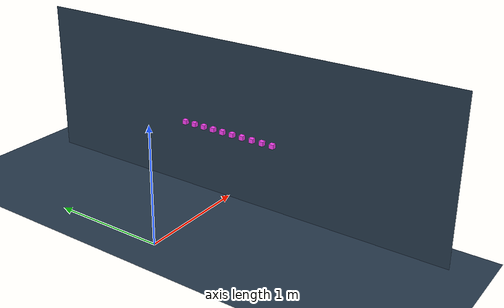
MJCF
<mujoco model="sticky_feet10">
  <option timestep="0.004" integrator="implicitfast" iterations="10" ls_iterations="8"/>
  <visual>
    <headlight ambient="0.4 0.4 0.4" diffuse="0.65 0.65 0.65" specular="0.1 0.1 0.1"/>
    <map haze="0"/>
  </visual>
  <asset>
    <texture type="skybox" builtin="gradient" rgb1="0.3 0.5 0.7" rgb2="0 0 0" width="512" height="512"/>
    <texture name="grid" type="2d" builtin="checker" rgb1="0.2 0.3 0.4" rgb2="0.1 0.15 0.2" width="512" height="512"/>
    <material name="grid" texture="grid" texrepeat="10 10" reflectance="0"/>
    <material name="foot" rgba="1 0.258824 0.976471 1"/>
  </asset>
  <worldbody>
    <light pos="0 0 2.0" dir="0 0 -1" diffuse="0.8 0.8 0.8"/>
    <geom name="floor" type="plane" size="0 0 0.05" material="grid" contype="1" conaffinity="1" priority="1" friction="2 0.5 0.5"/>
    <geom name="wall" type="plane" pos="1 0 0.6" zaxis="-1 0 0" size="0.8 2 0.05" material="grid" contype="1" conaffinity="1" friction="2 0.5 0.5"/>
    <body name="foot0" pos="0.975 -0.450 0.6">
      <freejoint/>
      <geom name="foot0" type="box" size="0.02 0.02 0.02" material="foot"
            contype="0" conaffinity="1" friction="2 0.5 0.5" margin="0.01" gap="0.01"/>
    </body>
    <body name="foot1" pos="0.975 -0.350 0.6">
      <freejoint/>
      <geom name="foot1" type="box" size="0.02 0.02 0.02" material="foot"
            contype="0" conaffinity="1" friction="2 0.5 0.5" margin="0.01" gap="0.01"/>
    </body>
    <body name="foot2" pos="0.975 -0.250 0.6">
      <freejoint/>
      <geom name="foot2" type="box" size="0.02 0.02 0.02" material="foot"
            contype="0" conaffinity="1" friction="2 0.5 0.5" margin="0.01" gap="0.01"/>
    </body>
    <body name="foot3" pos="0.975 -0.150 0.6">
      <freejoint/>
      <geom name="foot3" type="box" size="0.02 0.02 0.02" material="foot"
            contype="0" conaffinity="1" friction="2 0.5 0.5" margin="0.01" gap="0.01"/>
    </body>
    <body name="foot4" pos="0.975 -0.050 0.6">
      <freejoint/>
      <geom name="foot4" type="box" size="0.02 0.02 0.02" material="foot"
            contype="0" conaffinity="1" friction="2 0.5 0.5" margin="0.01" gap="0.01"/>
    </body>
    <body name="foot5" pos="0.975 0.050 0.6">
      <freejoint/>
      <geom name="foot5" type="box" size="0.02 0.02 0.02" material="foot"
            contype="0" conaffinity="1" friction="2 0.5 0.5" margin="0.01" gap="0.01"/>
    </body>
    <body name="foot6" pos="0.975 0.150 0.6">
      <freejoint/>
      <geom name="foot6" type="box" size="0.02 0.02 0.02" material="foot"
            contype="0" conaffinity="1" friction="2 0.5 0.5" margin="0.01" gap="0.01"/>
    </body>
    <body name="foot7" pos="0.975 0.250 0.6">
      <freejoint/>
      <geom name="foot7" type="box" size="0.02 0.02 0.02" material="foot"
            contype="0" conaffinity="1" friction="2 0.5 0.5" margin="0.01" gap="0.01"/>
    </body>
    <body name="foot8" pos="0.975 0.350 0.6">
      <freejoint/>
      <geom name="foot8" type="box" size="0.02 0.02 0.02" material="foot"
            contype="0" conaffinity="1" friction="2 0.5 0.5" margin="0.01" gap="0.01"/>
    </body>
    <body name="foot9" pos="0.975 0.450 0.6">
      <freejoint/>
      <geom name="foot9" type="box" size="0.02 0.02 0.02" material="foot"
            contype="0" conaffinity="1" friction="2 0.5 0.5" margin="0.01" gap="0.01"/>
    </body>
  </worldbody>
  <actuator>
    <adhesion name="stick0" body="foot0" ctrlrange="0 1" gain="0"/>
    <adhesion name="stick1" body="foot1" ctrlrange="0 1" gain="5"/>
    <adhesion name="stick2" body="foot2" ctrlrange="0 1" gain="10"/>
    <adhesion name="stick3" body="foot3" ctrlrange="0 1" gain="20"/>
    <adhesion name="stick4" body="foot4" ctrlrange="0 1" gain="40"/>
    <adhesion name="stick5" body="foot5" ctrlrange="0 1" gain="80"/>
    <adhesion name="stick6" body="foot6" ctrlrange="0 1" gain="160"/>
    <adhesion name="stick7" body="foot7" ctrlrange="0 1" gain="320"/>
    <adhesion name="stick8" body="foot8" ctrlrange="0 1" gain="640"/>
    <adhesion name="stick9" body="foot9" ctrlrange="0 1" gain="1280"/>
  </actuator>
</mujoco>
